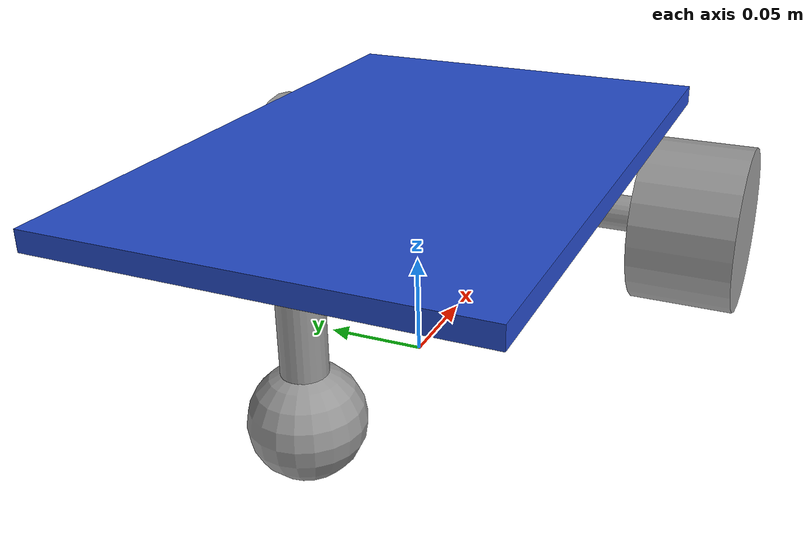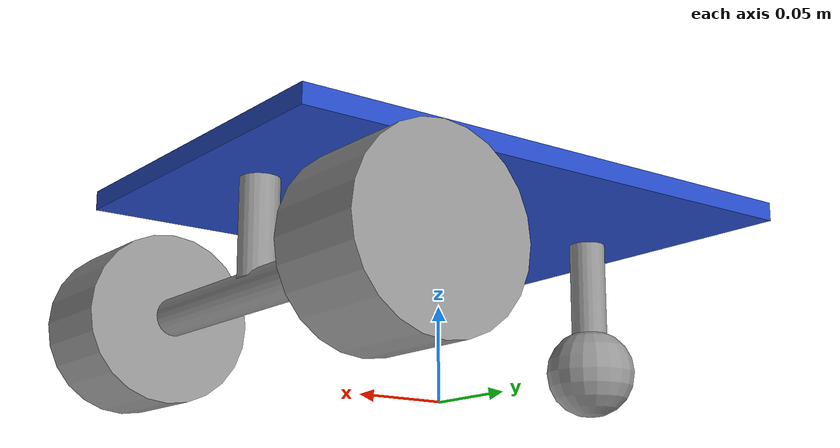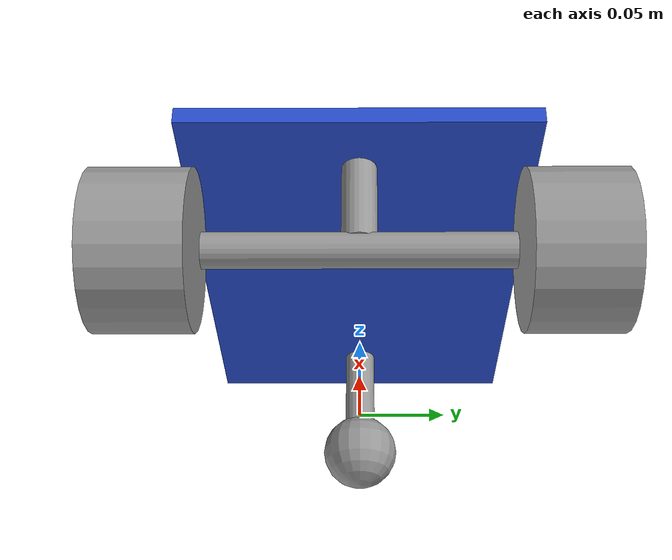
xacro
<?xml version="1.0"?>
<robot  xmlns:xacro = "http:/www.ros.org/wiki/xacro">

    <link name="base_footprint"/>

    <link name="base_link">
        <visual>
            <geometry>
                <box size="0.3 0.2 0.01" />
            </geometry>
            <origin xyz="0 0 0.005" rpy="0 0 0" />
            <material name="blue" />
        </visual>
        <collision>
            <geometry>
                <box size="0.3 0.2 0.01" />
            </geometry>
            <origin xyz="0 0 0.005" rpy="0 0 0" />
        </collision>
        <xacro:box_inertia m="10.0" l="${2*0.3}" w="${16*0.2}" h="${2*0.01}"
                           xyz="0 0 0.005" rpy="0 0 0" />
    </link>

    <link name="right_wheel_link">
        <visual>
            <geometry>
                <cylinder radius="0.045" length="0.055" />
            </geometry>
            <origin xyz="0 0 0" rpy="${pi/2.0} 0 0" />
            <material name="grey" />
        </visual>
        <collision>
            <geometry>
                <sphere radius="0.045" />
            </geometry>
            <origin xyz="0 0 0" rpy="${pi/2.0} 0 0" />
        </collision>
        <xacro:cylinder_inertia m="0.5" r="${2*0.045}" h="${2*0.055}"
                                xyz="0 0 0" rpy="${pi/2.0} 0 0" />
    </link>

    <link name="left_wheel_link">
        <visual>
            <geometry>
                <cylinder radius="0.045" length="0.055" />
            </geometry>
            <origin xyz="0 0 0" rpy="${pi/2.0} 0 0" />
            <material name="grey" />
        </visual>
        <collision>
            <geometry>
                <sphere radius="0.045"  />
            </geometry>
            <origin xyz="0 0 0" rpy="${pi/2.0} 0 0" />
        </collision>
        <xacro:cylinder_inertia m="0.5" r="${2*0.045}" h="${2*0.055}"
                                xyz="0 0 0" rpy="${pi/2.0} 0 0" />
    </link>

    <link name="caster_wheel_link">
        <visual>
            <geometry>
                <sphere radius="0.025" />
            </geometry>
            <origin xyz="0 0 0" rpy="0 0 0" />
            <material name="grey" />
        </visual>
        <collision>
            <geometry>
                <sphere radius="0.025" />
            </geometry>
            <origin xyz="0 0 0" rpy="0 0 0" />
        </collision>
        <xacro:sphere_inertia m="0.5" r="${2*0.025}" xyz="0 0 0" rpy="0 0 0" />
    </link>

    <link name="axle_mount_link">
        <visual>
            <geometry>
                <cylinder radius="0.01" length="0.05" />
            </geometry>
            <origin xyz="0 0 0" rpy="0 0 0" />
            <material name="grey" />
        </visual>
        <collision>
            <geometry>
                <cylinder radius="0.01" length="0.05" />
            </geometry>
            <origin xyz="0 0 0" rpy="0 0 0" />
        </collision>
        <xacro:cylinder_inertia m="0.1" r="${2*0.01}" h="${2*0.05}"
                                xyz="0 0 0" rpy="0 0 0" />
    </link>

    <link name="caster_mount_link">
        <visual>
            <geometry>
                <cylinder radius="0.01" length="0.075" />
            </geometry>
            <origin xyz="0 0 0" rpy="0 0 0" />
            <material name="grey" />
        </visual>
        <collision>
            <geometry>
                <cylinder radius="0.01" length="0.075" />
            </geometry>
            <origin xyz="0 0 0" rpy="0 0 0" />
        </collision>
        <xacro:cylinder_inertia m="0.1" r="${2*0.01}" h="${2*0.075}"
                                xyz="0 0 0" rpy="0 0 0" />
    </link>

    <link name="axle_link">
        <visual>
            <geometry>
                <cylinder radius="0.01" length="0.17" />
            </geometry>
            <origin xyz="0 0 0" rpy="${pi/2.0} 0 0" />
            <material name="grey" />
        </visual>
        <collision>
            <geometry>
                <cylinder radius="0.01" length="0.17" />
            </geometry>
            <origin xyz="0 0 0" rpy="${pi/2.0} 0 0" />
        </collision>
        <xacro:cylinder_inertia m="0.1" r="${2*0.01}" h="${2*0.17}"
                                xyz="0 0 0" rpy="${pi/2.0} 0 0" />
    </link>

<!-- joints section -->
    <joint name="base_joint" type="fixed">
        <parent link="base_footprint" />
        <child link="base_link" />
        <origin xyz="0 0 0.1" rpy="0 0 0"/>
    </joint>

    <joint name="axle_right_wheel_joint" type="continuous">
        <parent link="axle_link" />
        <child link="right_wheel_link" />
        <origin xyz="0 -0.116 0" rpy="0 0 0" />
        <axis xyz="0 1 0" />
    </joint>

    <joint name="axle_left_wheel_joint" type="continuous">
        <parent link="axle_link" />
        <child link="left_wheel_link" />
        <origin xyz="0 0.116 0" rpy="0 0 0" />
        <axis xyz="0 1 0" />
    </joint>

    <joint name="caster_mount_caster_wheel_joint" type="fixed">
        <parent link="caster_mount_link" />
        <child link="caster_wheel_link" />
        <origin xyz="0 0 -0.0375" rpy="0 0 0" />
    </joint>

    <joint name="base_axle_mount_joint" type="fixed">
        <parent link="base_link" />
        <child link="axle_mount_link" />
        <origin xyz="0.11 0 -0.025" rpy="0 0 0" />
    </joint>
    <joint name="base_caster_mount_joint" type="fixed">
        <parent link="base_link" />
        <child link="caster_mount_link" />
        <origin xyz="-0.11 0 -0.0375" rpy="0 0 0" />
    </joint>

    <joint name="axle_axle_mount_joint" type="fixed">
        <parent link="axle_mount_link" />
        <child link="axle_link" />
        <origin xyz="0 0 -0.030" rpy="0 0 0" />
    </joint>

        <!-- colors in gazebo world -->
    <gazebo reference="base_link">
        <material>Gazebo/Blue</material>
    </gazebo>

    <gazebo reference="right_wheel_link">
        <material>Gazebo/Grey</material>
    </gazebo>

    <gazebo reference="left_wheel_link">
        <material>Gazebo/Grey</material>
    </gazebo>

    <gazebo reference="caster_wheel_link">
        <material>Gazebo/Grey</material>
        <mu1 value = "0.001" />
        <mu2 value = "0.001" />
    </gazebo>

</robot>
